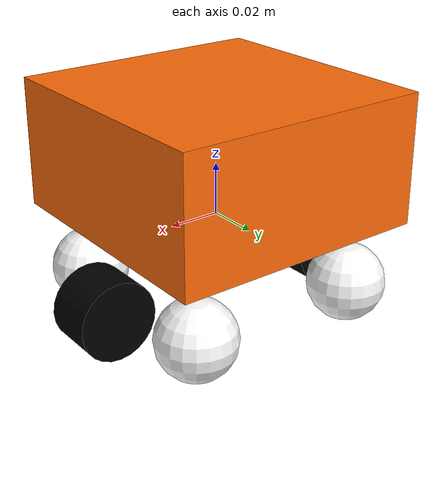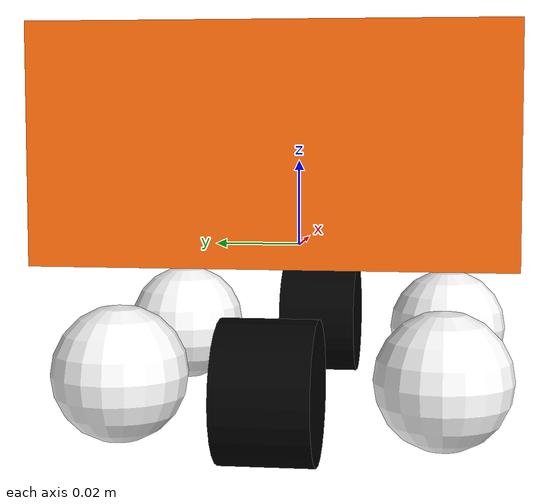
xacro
<?xml version="1.0"?>
<!-- Basic double steering drive mobile base -->
<robot xmlns:xacro="http://www.ros.org/wiki/xacro" name="doublesteeringdrive_robot">
  <xacro:arg name="prefix" default="" />
  <xacro:arg name="use_mock_hardware" default="false" />

  <xacro:include filename="$(find dsd_bot_description)/dsdbot/urdf/dsdbot_description.urdf.xacro" />

  <!-- Import Rviz colors -->
  <xacro:include filename="$(find dsd_bot_description)/dsdbot/urdf/dsdbot.materials.xacro" />

  <!-- Import dsdbot ros2_control description -->
  <xacro:include filename="$(find dsd_control_demo)/ros2_control/dsdbot.ros2_control.xacro" />

  <xacro:dsdbot prefix="$(arg prefix)" />

  <xacro:dsdbot_ros2_control
    name="DsdBot" prefix="$(arg prefix)" use_mock_hardware="$(arg use_mock_hardware)"/>

</robot>

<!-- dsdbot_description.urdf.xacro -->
<robot xmlns:xacro="http://www.ros.org/wiki/xacro">

  <xacro:macro name="dsdbot" params="prefix">

  <!-- Constants for robot dimensions -->
  <xacro:property name="PI" value="3.1415926535897931"/>
  <xacro:property name="base_mass" value="0.3" /> <!-- arbitrary value for base mass -->
  <xacro:property name="base_width" value="0.1" />
  <xacro:property name="base_length" value="0.1" />
  <xacro:property name="base_height" value="0.05" />
  <xacro:property name="wheel_mass" value="0.3" /> <!-- arbitrary value for wheel mass -->
  <xacro:property name="wheel_len" value="0.020" />
  <xacro:property name="wheel_radius" value="0.015" />
  <xacro:property name="caster_wheel_mass" value="0.1" /> <!-- arbitrary value for caster wheel mass -->
  <xacro:property name="caster_wheel_radius" value="0.015" />
  <xacro:property name="z_offset" value="-${base_height/2}" /> <!-- Space btw top of beam and the each joint -->

  <!-- Base Link -->
  <link name="${prefix}base_link">
    <collision>
      <origin xyz="0 0 0" rpy="0 0 0"/>
      <geometry>
        <box size="${base_width} ${base_length} ${base_height}"/>
      </geometry>
    </collision>

    <visual>
      <origin xyz="0 0 ${base_height/2}" rpy="0 0 0"/>
      <geometry>
        <box size="${base_width} ${base_length} ${base_height}"/>
      </geometry>
      <material name="orange"/>
    </visual>

    <inertial>
      <origin xyz="0 0 0" rpy="0 0 0"/>
      <mass value="${base_mass}"/>
      <inertia
        ixx="${base_mass / 12.0 * (base_length*base_length + base_height*base_height)}" ixy="0.0" ixz="0.0"
        iyy="${base_mass / 12.0 * (base_height*base_height + base_width*base_width)}" iyz="0.0"
        izz="${base_mass / 12.0 * (base_width*base_width + base_length*base_length)}"/>
      </inertial>
    </link>

    <!-- Front Wheel Assembly -->
    <!-- Front steering joint (steering) -->
    <joint name="${prefix}front_steering_joint" type="revolute">
      <parent link="${prefix}base_link"/>
      <child link="${prefix}front_steering_link"/>
      <origin xyz="${base_length/2} 0 ${z_offset}" rpy="0 0 0"/>
      <axis xyz="0 0 1"/>
      <limit lower="-12.566" upper="12.566" effort="100" velocity="2.0"/>
      <dynamics damping="0.1"/>
    </joint>

    <!-- Front steering link -->
    <link name="${prefix}front_steering_link">
      <visual>
        <origin xyz="0 0 0" rpy="0 0 0"/>
        <geometry>
          <cylinder length="0.01" radius="0.005"/>
        </geometry>
        <material name="gray"/>
      </visual>
    </link>

    <!-- Front wheel joint (driving) -->
    <joint name="${prefix}front_wheel_joint" type="continuous">
      <parent link="${prefix}front_steering_link"/>
      <child link="${prefix}front_wheel"/>
      <origin xyz="0 0 0" rpy="0 0 0"/>
      <axis xyz="0 1 0"/>
      <dynamics damping="0.2"/>
      <limit effort="100" velocity="10.0"/>
    </joint>

    <!-- front wheel Link -->
    <link name="${prefix}front_wheel">
      <collision>
        <origin xyz="0 0 0" rpy="${PI/2} 0 0"/>
        <geometry>
          <cylinder length="${wheel_len}" radius="${wheel_radius}"/>
        </geometry>
      </collision>

      <visual>
        <origin xyz="0 0 0" rpy="${PI/2} 0 0"/>
        <geometry>
          <cylinder length="${wheel_len}" radius="${wheel_radius}"/>
        </geometry>
        <material name="black"/>
      </visual>

      <inertial>
        <origin xyz="0 0 0" rpy="${PI/2} 0 0"/>
        <mass value="${wheel_mass}"/>
        <inertia
          ixx="${wheel_mass / 12.0 * (3*wheel_radius*wheel_radius + wheel_len*wheel_len)}" ixy="0.0" ixz="0.0"
          iyy="${wheel_mass / 12.0 * (3*wheel_radius*wheel_radius + wheel_len*wheel_len)}" iyz="0.0"
          izz="${wheel_mass / 2.0 * wheel_radius*wheel_radius}"/>
        </inertial>
      </link>

    <!-- Rear Wheel Assembly -->
    <!-- Rear steering joint (steering) -->
    <joint name="${prefix}rear_steering_joint" type="revolute">
      <parent link="${prefix}base_link"/>
      <child link="${prefix}rear_steering_link"/>
      <origin xyz="-${base_length/2} 0 ${z_offset}" rpy="0 0 0"/>
      <axis xyz="0 0 1"/>
      <limit lower="-12.566" upper="12.566" effort="100" velocity="2.0"/>
      <dynamics damping="0.1"/>
    </joint>

    <!-- Rear steering link -->
    <link name="${prefix}rear_steering_link">
      <visual>
        <origin xyz="0 0 0" rpy="0 0 0"/>
        <geometry>
          <cylinder length="0.01" radius="0.005"/>
        </geometry>
        <material name="gray"/>
      </visual>
    </link>

    <!-- Rear wheel joint (driving) -->
    <joint name="${prefix}rear_wheel_joint" type="continuous">
      <parent link="${prefix}rear_steering_link"/>
      <child link="${prefix}rear_wheel"/>
      <origin xyz="0 0 0" rpy="0 0 0"/>
      <axis xyz="0 1 0"/>
      <dynamics damping="0.2"/>
      <limit effort="100" velocity="10.0"/>
    </joint>

    <!-- rear wheel Link -->
    <link name="${prefix}rear_wheel">
      <collision>
        <origin xyz="0 0 0" rpy="${PI/2} 0 0"/>
        <geometry>
          <cylinder length="${wheel_len}" radius="${wheel_radius}"/>
        </geometry>
      </collision>

      <visual>
        <origin xyz="0 0 0" rpy="${PI/2} 0 0"/>
        <geometry>
          <cylinder length="${wheel_len}" radius="${wheel_radius}"/>
        </geometry>
        <material name="black"/>
      </visual>

      <inertial>
        <origin xyz="0 0 0" rpy="${PI/2} 0 0"/>
        <mass value="${wheel_mass}"/>
        <inertia
          ixx="${wheel_mass / 12.0 * (3*wheel_radius*wheel_radius + wheel_len*wheel_len)}" ixy="0.0" ixz="0.0"
          iyy="${wheel_mass / 12.0 * (3*wheel_radius*wheel_radius + wheel_len*wheel_len)}" iyz="0.0"
          izz="${wheel_mass / 2.0 * wheel_radius*wheel_radius}"/>
        </inertial>
      </link>

    <!-- Caster wheels at corners for stability -->
    <!-- Front Left Caster -->
    <joint name="${prefix}caster_front_left_joint" type="fixed">
      <parent link="${prefix}base_link"/>
      <child link="${prefix}caster_front_left"/>
      <origin xyz="${base_length/2 - caster_wheel_radius} -${base_width/2 - caster_wheel_radius} ${z_offset}" rpy="0 0 0"/>
    </joint>

    <link name="${prefix}caster_front_left">
      <collision>
        <origin xyz="0 0 0" rpy="0 0 0"/>
        <geometry>
          <sphere radius="${caster_wheel_radius}"/>
        </geometry>
      </collision>

      <visual>
        <origin xyz="0 0 0" rpy="0 0 0"/>
        <geometry>
          <sphere radius="${caster_wheel_radius}"/>
        </geometry>
        <material name="white"/>
      </visual>

      <inertial>
        <origin xyz="0 0 0" rpy="0 0 0"/>
        <mass value="${caster_wheel_mass}"/>
        <inertia
          ixx="${caster_wheel_mass * 0.4 * (caster_wheel_radius * caster_wheel_radius)}" ixy="0.0" ixz="0.0"
          iyy="${caster_wheel_mass * 0.4 * (caster_wheel_radius * caster_wheel_radius)}" iyz="0.0"
          izz="${caster_wheel_mass * 0.4 * (caster_wheel_radius * caster_wheel_radius)}"/>
        </inertial>
      </link>

    <!-- Front Right Caster -->
    <joint name="${prefix}caster_front_right_joint" type="fixed">
      <parent link="${prefix}base_link"/>
      <child link="${prefix}caster_front_right"/>
      <origin xyz="${base_length/2 - caster_wheel_radius} ${base_width/2 - caster_wheel_radius} ${z_offset}" rpy="0 0 0"/>
    </joint>

    <link name="${prefix}caster_front_right">
      <collision>
        <origin xyz="0 0 0" rpy="0 0 0"/>
        <geometry>
          <sphere radius="${caster_wheel_radius}"/>
        </geometry>
      </collision>

      <visual>
        <origin xyz="0 0 0" rpy="0 0 0"/>
        <geometry>
          <sphere radius="${caster_wheel_radius}"/>
        </geometry>
        <material name="white"/>
      </visual>

      <inertial>
        <origin xyz="0 0 0" rpy="0 0 0"/>
        <mass value="${caster_wheel_mass}"/>
        <inertia
          ixx="${caster_wheel_mass * 0.4 * (caster_wheel_radius * caster_wheel_radius)}" ixy="0.0" ixz="0.0"
          iyy="${caster_wheel_mass * 0.4 * (caster_wheel_radius * caster_wheel_radius)}" iyz="0.0"
          izz="${caster_wheel_mass * 0.4 * (caster_wheel_radius * caster_wheel_radius)}"/>
        </inertial>
      </link>

    <!-- Rear Left Caster -->
    <joint name="${prefix}caster_rear_left_joint" type="fixed">
      <parent link="${prefix}base_link"/>
      <child link="${prefix}caster_rear_left"/>
      <origin xyz="-${base_length/2 - caster_wheel_radius} -${base_width/2 - caster_wheel_radius} ${z_offset}" rpy="0 0 0"/>
    </joint>

    <link name="${prefix}caster_rear_left">
      <collision>
        <origin xyz="0 0 0" rpy="0 0 0"/>
        <geometry>
          <sphere radius="${caster_wheel_radius}"/>
        </geometry>
      </collision>

      <visual>
        <origin xyz="0 0 0" rpy="0 0 0"/>
        <geometry>
          <sphere radius="${caster_wheel_radius}"/>
        </geometry>
        <material name="white"/>
      </visual>

      <inertial>
        <origin xyz="0 0 0" rpy="0 0 0"/>
        <mass value="${caster_wheel_mass}"/>
        <inertia
          ixx="${caster_wheel_mass * 0.4 * (caster_wheel_radius * caster_wheel_radius)}" ixy="0.0" ixz="0.0"
          iyy="${caster_wheel_mass * 0.4 * (caster_wheel_radius * caster_wheel_radius)}" iyz="0.0"
          izz="${caster_wheel_mass * 0.4 * (caster_wheel_radius * caster_wheel_radius)}"/>
        </inertial>
      </link>

    <!-- Rear Right Caster -->
    <joint name="${prefix}caster_rear_right_joint" type="fixed">
      <parent link="${prefix}base_link"/>
      <child link="${prefix}caster_rear_right"/>
      <origin xyz="-${base_length/2 - caster_wheel_radius} ${base_width/2 - caster_wheel_radius} ${z_offset}" rpy="0 0 0"/>
    </joint>

    <link name="${prefix}caster_rear_right">
      <collision>
        <origin xyz="0 0 0" rpy="0 0 0"/>
        <geometry>
          <sphere radius="${caster_wheel_radius}"/>
        </geometry>
      </collision>

      <visual>
        <origin xyz="0 0 0" rpy="0 0 0"/>
        <geometry>
          <sphere radius="${caster_wheel_radius}"/>
        </geometry>
        <material name="white"/>
      </visual>

      <inertial>
        <origin xyz="0 0 0" rpy="0 0 0"/>
        <mass value="${caster_wheel_mass}"/>
        <inertia
          ixx="${caster_wheel_mass * 0.4 * (caster_wheel_radius * caster_wheel_radius)}" ixy="0.0" ixz="0.0"
          iyy="${caster_wheel_mass * 0.4 * (caster_wheel_radius * caster_wheel_radius)}" iyz="0.0"
          izz="${caster_wheel_mass * 0.4 * (caster_wheel_radius * caster_wheel_radius)}"/>
        </inertial>
      </link>

  </xacro:macro>

</robot>

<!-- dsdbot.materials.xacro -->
<!--
Copied from ROS1 example:
https://github.com/ros-simulation/gazebo_ros_demos/blob/kinetic-devel/rrbot_description/urdf/materials.xacro
-->
<robot>

  <material name="black">
    <color rgba="0.0 0.0 0.0 1.0"/>
  </material>

  <material name="blue">
    <color rgba="0.0 0.0 0.8 1.0"/>
  </material>

  <material name="green">
    <color rgba="0.0 0.8 0.0 1.0"/>
  </material>

  <material name="gray">
    <color rgba="0.2 0.2 0.2 1.0"/>
  </material>

  <material name="orange">
    <color rgba="${255/255} ${108/255} ${10/255} 1.0"/>
  </material>

  <material name="brown">
    <color rgba="${222/255} ${207/255} ${195/255} 1.0"/>
  </material>

  <material name="red">
    <color rgba="0.8 0.0 0.0 1.0"/>
  </material>

  <material name="white">
    <color rgba="1.0 1.0 1.0 1.0"/>
  </material>

</robot>
